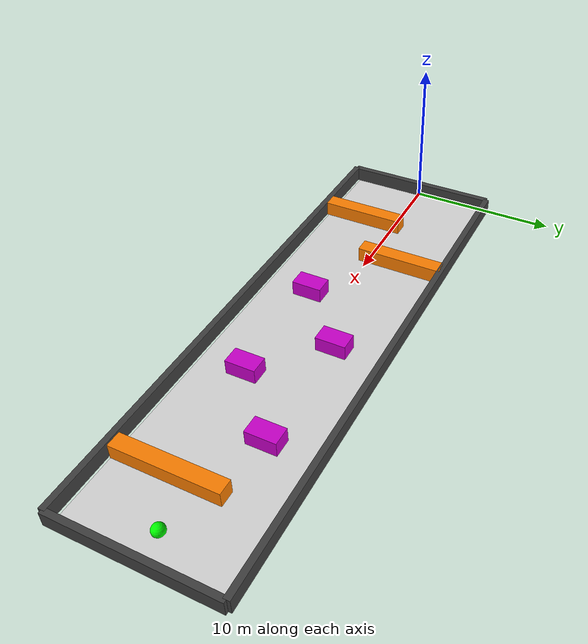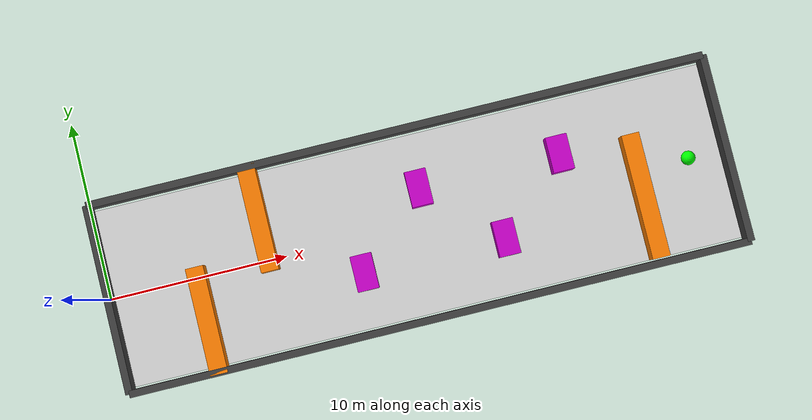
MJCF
<mujoco model="Corridor_Map_2_ZigzagFront">
    <option timestep="0.01" gravity="0 0 -9.81"/>

    <visual>
        <headlight diffuse="0.7 0.7 0.7" ambient="0.3 0.3 0.3"/>
        <global azimuth="135" elevation="-28"/>
    </visual>

    <worldbody>

        <!-- FLOOR -->
        <geom name="floor" type="plane"
              pos="17.5 0 0"
              size="17.5 5 0.1"
              rgba="0.85 0.85 0.85 1"/>

        <!-- WALLS -->
        <geom type="box" pos="17.5 5.3 0.5" size="17.5 0.2 0.5" rgba="0.25 0.25 0.25 1"/>
        <geom type="box" pos="17.5 -5.3 0.5" size="17.5 0.2 0.5" rgba="0.25 0.25 0.25 1"/>
        <geom type="box" pos="0 0 0.5" size="0.2 5.3 0.5" rgba="0.25 0.25 0.25 1"/>
        <geom type="box" pos="35 0 0.5" size="0.2 5.3 0.5" rgba="0.25 0.25 0.25 1"/>

        <!-- ZIGZAG ZONE (MOVED TO FRONT) -->
        <geom type="box" pos="5 -2.4 0.5" size="0.5 3 0.5" rgba="1 0.5 0 1"/>
        <geom type="box" pos="9  2.4 0.5" size="0.5 3 0.5" rgba="1 0.5 0 1"/>

        <!-- MID ZONE (unchanged density, slight shuffle) -->

        <geom type="box" pos="14 -1.9 0.5" size="0.6 1 0.5" rgba="0.8 0 0.8 1"/>
        <geom type="box" pos="18  1.9 0.5" size="0.6 1 0.5" rgba="0.8 0 0.8 1"/>
        <geom type="box" pos="22 -1.9 0.5" size="0.6 1 0.5" rgba="0.8 0 0.8 1"/>
        <geom type="box" pos="26  1.9 0.5" size="0.6 1 0.5" rgba="0.8 0 0.8 1"/>

        <!-- FINAL ZONE (BOTTLENECK REMAINS HERE) -->

        <geom type="box" pos="30 -1.5 0.5" size="0.5 3.5 0.5" rgba="1 0.5 0 1"/>

        <!-- GOAL -->
        <body name="goal" pos="33 0 0.1" mocap="true">
            <site name="goal_site" type="sphere" size="0.4" rgba="0 1 0 1"/>
        </body>

    </worldbody>
</mujoco>
